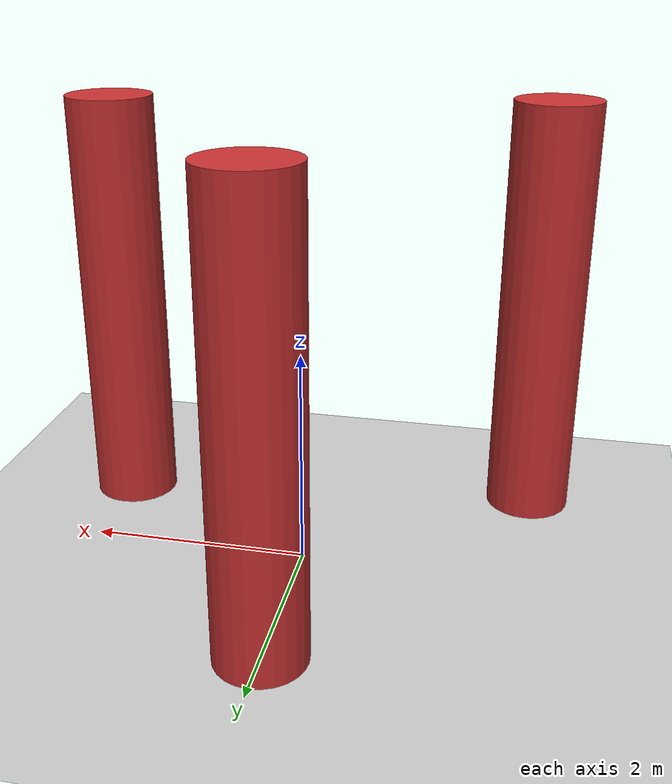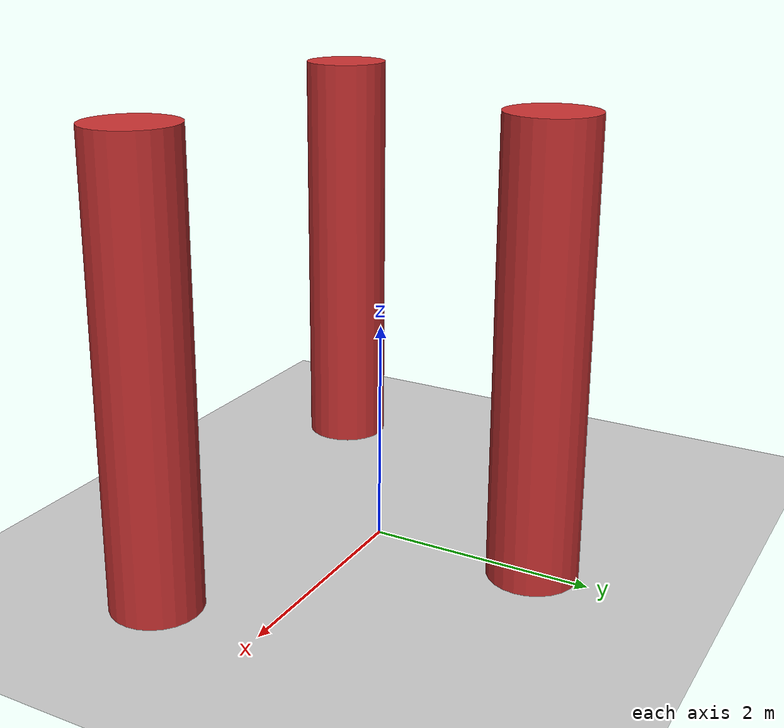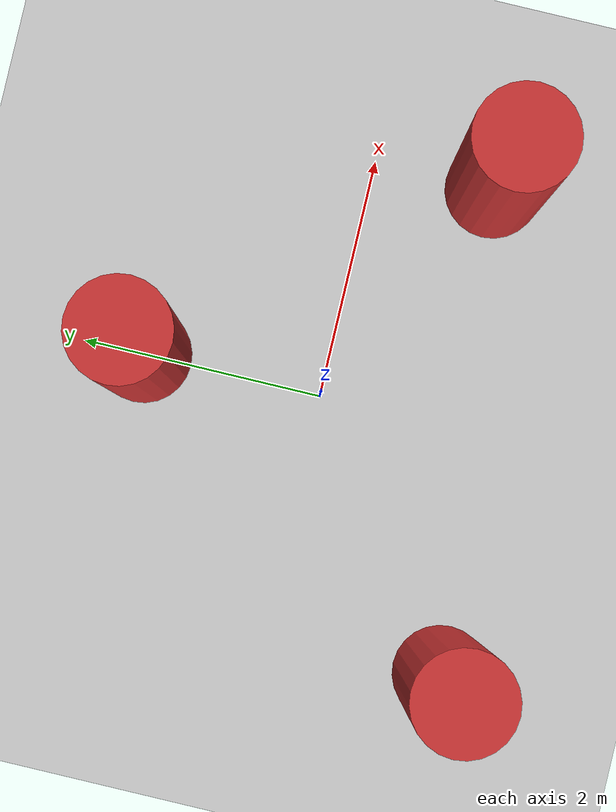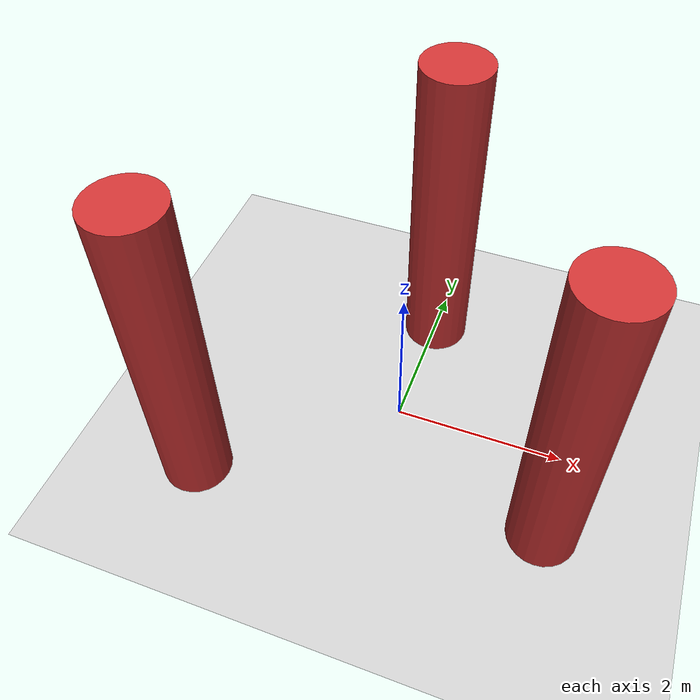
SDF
<?xml version="1.0" ?>
<sdf version="1.6">
  <world name="stress_test">
    <physics name="4ms" type="ignored">
      <max_step_size>0.004</max_step_size>
      <real_time_factor>1.0</real_time_factor>
    </physics>
    <plugin filename="gz-sim-physics-system" name="gz::sim::systems::Physics"></plugin>
    <plugin filename="gz-sim-scene-broadcaster-system" name="gz::sim::systems::SceneBroadcaster"></plugin>
    <plugin filename="gz-sim-user-commands-system" name="gz::sim::systems::UserCommands"></plugin>
    <plugin filename="gz-sim-sensors-system" name="gz::sim::systems::Sensors">
      <render_engine>ogre2</render_engine>
    </plugin>

    <wind>
      <linear_velocity>0 3 0</linear_velocity>
    </wind>
    <plugin filename="gz-sim-wind-effects-system" name="gz::sim::systems::WindEffects">
      <force_approximation_scaling_factor>1</force_approximation_scaling_factor>
      <horizontal>
        <magnitude>
          <time_for_rise>3</time_for_rise>
          <sin>
            <amplitude_percent>0.3</amplitude_percent>
            <period>15</period>
          </sin>
          <noise type="gaussian">
            <mean>0</mean>
            <stddev>0.05</stddev>
          </noise>
        </magnitude>
        <direction>
          <time_for_rise>5</time_for_rise>
          <sin>
            <amplitude>10</amplitude>
            <period>20</period>
          </sin>
        </direction>
      </horizontal>
    </plugin>

    <light type="directional" name="sun">
      <cast_shadows>true</cast_shadows>
      <pose>0 0 10 0 0 0</pose>
      <diffuse>0.8 0.8 0.8 1</diffuse>
      <specular>0.2 0.2 0.2 1</specular>
      <attenuation>
        <range>1000</range>
        <constant>0.9</constant>
        <linear>0.01</linear>
        <quadratic>0.001</quadratic>
      </attenuation>
      <direction>-0.5 0.1 -0.9</direction>
    </light>

    <model name="ground_plane">
      <static>true</static>
      <link name="link">
        <collision name="collision">
          <geometry><plane><normal>0 0 1</normal><size>100 100</size></plane></geometry>
        </collision>
        <visual name="visual">
          <geometry><plane><normal>0 0 1</normal><size>100 100</size></plane></geometry>
          <material>
            <ambient>0.8 0.8 0.8 1</ambient>
            <diffuse>0.8 0.8 0.8 1</diffuse>
            <specular>0.8 0.8 0.8 1</specular>
          </material>
        </visual>
      </link>
    </model>

    <!-- Obstacle gauntlet between the default start (x=-8) and destination
         (x=8) zones. Static pillars at drone flight height. -->
    <model name="obstacle_1">
      <static>true</static>
      <pose>-2 -1.5 2 0 0 0</pose>
      <link name="link">
        <collision name="collision"><geometry><cylinder><radius>0.4</radius><length>4</length></cylinder></geometry></collision>
        <visual name="visual">
          <geometry><cylinder><radius>0.4</radius><length>4</length></cylinder></geometry>
          <material><ambient>0.8 0.2 0.2 1</ambient><diffuse>0.8 0.2 0.2 1</diffuse></material>
        </visual>
      </link>
    </model>
    <model name="obstacle_2">
      <static>true</static>
      <pose>0 1.5 2 0 0 0</pose>
      <link name="link">
        <collision name="collision"><geometry><cylinder><radius>0.4</radius><length>4</length></cylinder></geometry></collision>
        <visual name="visual">
          <geometry><cylinder><radius>0.4</radius><length>4</length></cylinder></geometry>
          <material><ambient>0.8 0.2 0.2 1</ambient><diffuse>0.8 0.2 0.2 1</diffuse></material>
        </visual>
      </link>
    </model>
    <model name="obstacle_3">
      <static>true</static>
      <pose>2 -1 2 0 0 0</pose>
      <link name="link">
        <collision name="collision"><geometry><cylinder><radius>0.4</radius><length>4</length></cylinder></geometry></collision>
        <visual name="visual">
          <geometry><cylinder><radius>0.4</radius><length>4</length></cylinder></geometry>
          <material><ambient>0.8 0.2 0.2 1</ambient><diffuse>0.8 0.2 0.2 1</diffuse></material>
        </visual>
      </link>
    </model>
  </world>
</sdf>
